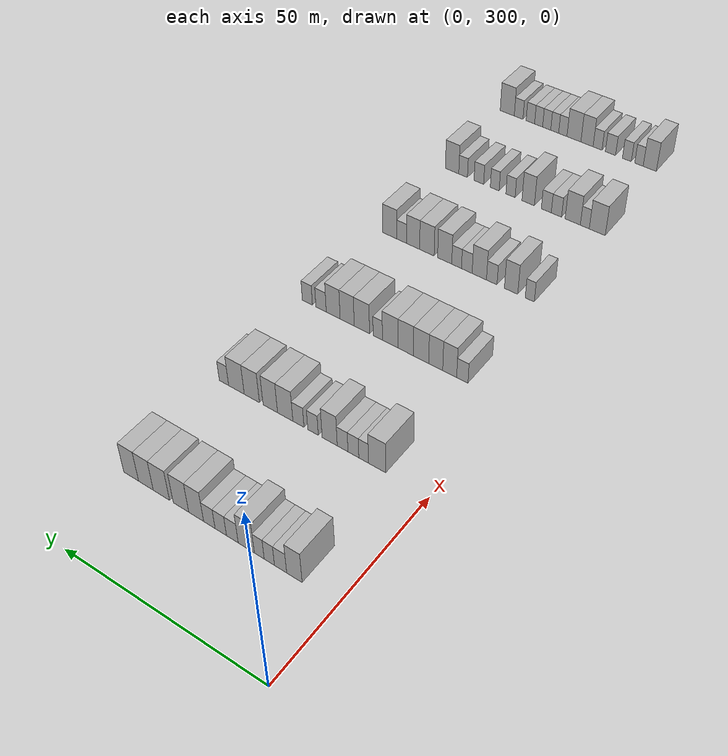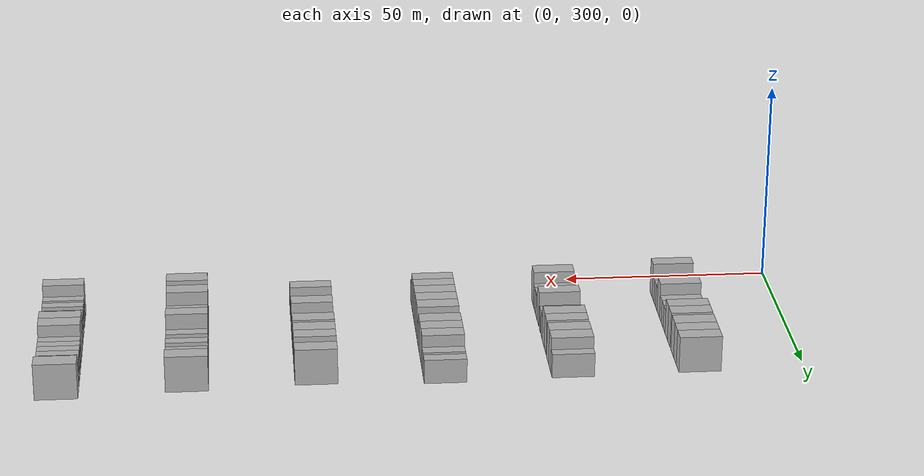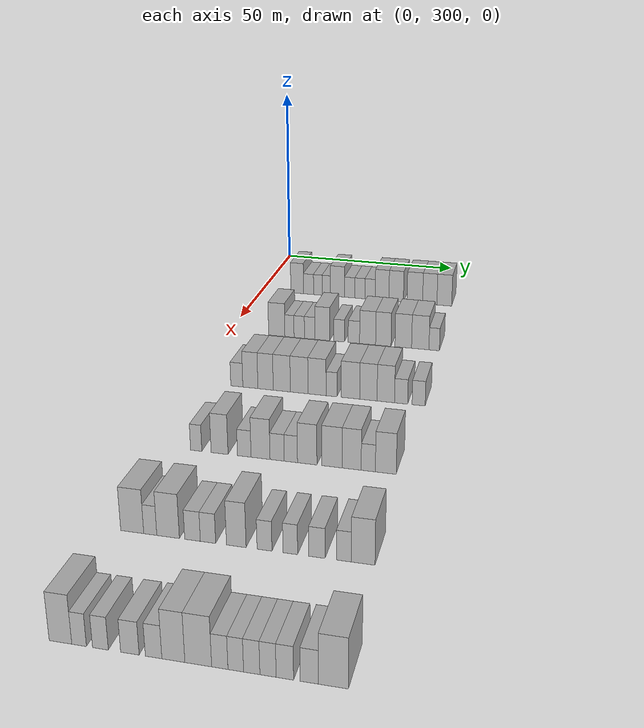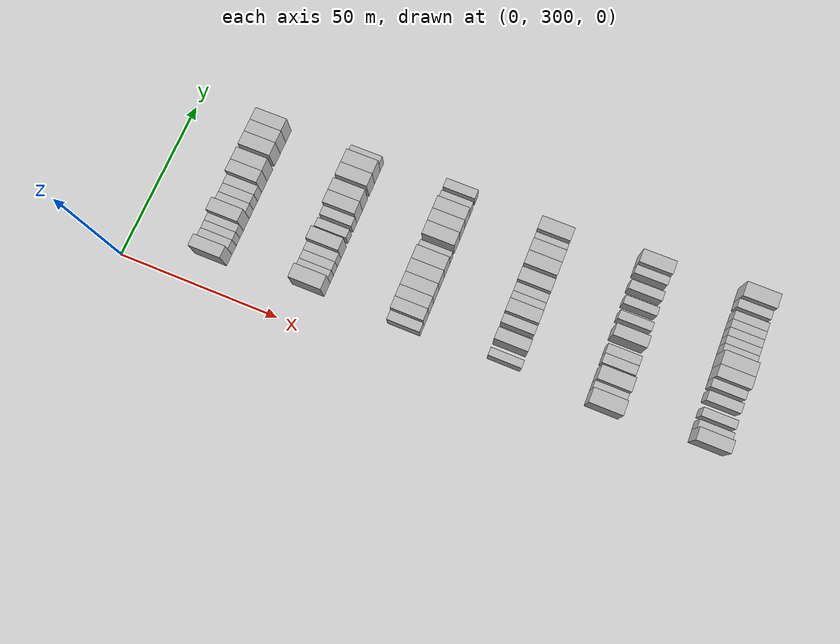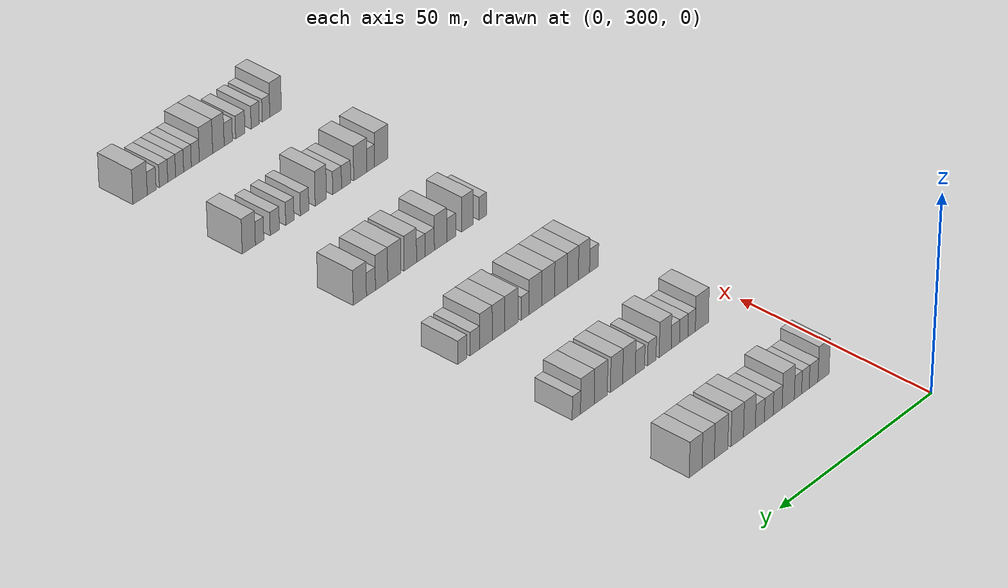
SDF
<sdf version="1.6">
 <world name="default">
  <model name="building_198">
   <static>1</static>
   <pose>25.0000 310.2399 0 0.000000 0.000000 0.000000</pose>
   <link name="link">
    <pose>0 0 4.50 0 0 0</pose>
    <collision name="collision"><geometry><box><size>10.0000 3.6778 9.0000</size></box></geometry></collision>
    <visual name="visual">
     <cast_shadows>0</cast_shadows>
     <geometry><box><size>10.0000 3.6778 9.0000</size></box></geometry>
     <material>
      <script>
       <uri>model://HANNAS_wall/materials/scripts</uri>
       <uri>model://HANNAS_wall/materials/textures</uri>
       <name>vrc/HANNAS_wall</name>
      </script>
     </material>
    </visual>
   </link>
  </model>
  <model name="building_199">
   <static>1</static>
   <pose>25.0000 313.5424 0 0.000000 0.000000 0.000000</pose>
   <link name="link">
    <pose>0 0 3.00 0 0 0</pose>
    <collision name="collision"><geometry><box><size>10.0000 2.9272 6.0000</size></box></geometry></collision>
    <visual name="visual">
     <cast_shadows>0</cast_shadows>
     <geometry><box><size>10.0000 2.9272 6.0000</size></box></geometry>
     <material>
      <script>
       <uri>model://HANNAS_wall/materials/scripts</uri>
       <uri>model://HANNAS_wall/materials/textures</uri>
       <name>vrc/HANNAS_wall</name>
      </script>
     </material>
    </visual>
   </link>
  </model>
  <model name="building_200">
   <static>1</static>
   <pose>25.0000 316.2528 0 0.000000 0.000000 0.000000</pose>
   <link name="link">
    <pose>0 0 3.00 0 0 0</pose>
    <collision name="collision"><geometry><box><size>10.0000 2.4934 6.0000</size></box></geometry></collision>
    <visual name="visual">
     <cast_shadows>0</cast_shadows>
     <geometry><box><size>10.0000 2.4934 6.0000</size></box></geometry>
     <material>
      <script>
       <uri>model://HANNAS_wall/materials/scripts</uri>
       <uri>model://HANNAS_wall/materials/textures</uri>
       <name>vrc/HANNAS_wall</name>
      </script>
     </material>
    </visual>
   </link>
  </model>
  <model name="building_201">
   <static>1</static>
   <pose>25.0000 318.7063 0 0.000000 0.000000 0.000000</pose>
   <link name="link">
    <pose>0 0 3.00 0 0 0</pose>
    <collision name="collision"><geometry><box><size>10.0000 2.4136 6.0000</size></box></geometry></collision>
    <visual name="visual">
     <cast_shadows>0</cast_shadows>
     <geometry><box><size>10.0000 2.4136 6.0000</size></box></geometry>
     <material>
      <script>
       <uri>model://HANNAS_wall/materials/scripts</uri>
       <uri>model://HANNAS_wall/materials/textures</uri>
       <name>vrc/HANNAS_wall</name>
      </script>
     </material>
    </visual>
   </link>
  </model>
  <model name="building_202">
   <static>1</static>
   <pose>25.0000 321.9130 0 0.000000 0.000000 0.000000</pose>
   <link name="link">
    <pose>0 0 4.50 0 0 0</pose>
    <collision name="collision"><geometry><box><size>10.0000 3.9999 9.0000</size></box></geometry></collision>
    <visual name="visual">
     <cast_shadows>0</cast_shadows>
     <geometry><box><size>10.0000 3.9999 9.0000</size></box></geometry>
     <material>
      <script>
       <uri>model://HANNAS_wall/materials/scripts</uri>
       <uri>model://HANNAS_wall/materials/textures</uri>
       <name>vrc/HANNAS_wall</name>
      </script>
     </material>
    </visual>
   </link>
  </model>
  <model name="building_203">
   <static>1</static>
   <pose>25.0000 325.3806 0 0.000000 0.000000 0.000000</pose>
   <link name="link">
    <pose>0 0 3.00 0 0 0</pose>
    <collision name="collision"><geometry><box><size>10.0000 2.9354 6.0000</size></box></geometry></collision>
    <visual name="visual">
     <cast_shadows>0</cast_shadows>
     <geometry><box><size>10.0000 2.9354 6.0000</size></box></geometry>
     <material>
      <script>
       <uri>model://HANNAS_wall/materials/scripts</uri>
       <uri>model://HANNAS_wall/materials/textures</uri>
       <name>vrc/HANNAS_wall</name>
      </script>
     </material>
    </visual>
   </link>
  </model>
  <model name="building_204">
   <static>1</static>
   <pose>25.0000 328.2910 0 0.000000 0.000000 0.000000</pose>
   <link name="link">
    <pose>0 0 3.00 0 0 0</pose>
    <collision name="collision"><geometry><box><size>10.0000 2.8855 6.0000</size></box></geometry></collision>
    <visual name="visual">
     <cast_shadows>0</cast_shadows>
     <geometry><box><size>10.0000 2.8855 6.0000</size></box></geometry>
     <material>
      <script>
       <uri>model://HANNAS_wall/materials/scripts</uri>
       <uri>model://HANNAS_wall/materials/textures</uri>
       <name>vrc/HANNAS_wall</name>
      </script>
     </material>
    </visual>
   </link>
  </model>
  <model name="building_205">
   <static>1</static>
   <pose>25.0000 331.2012 0 0.000000 0.000000 0.000000</pose>
   <link name="link">
    <pose>0 0 3.00 0 0 0</pose>
    <collision name="collision"><geometry><box><size>10.0000 2.9349 6.0000</size></box></geometry></collision>
    <visual name="visual">
     <cast_shadows>0</cast_shadows>
     <geometry><box><size>10.0000 2.9349 6.0000</size></box></geometry>
     <material>
      <script>
       <uri>model://HANNAS_wall/materials/scripts</uri>
       <uri>model://HANNAS_wall/materials/textures</uri>
       <name>vrc/HANNAS_wall</name>
      </script>
     </material>
    </visual>
   </link>
  </model>
  <model name="building_206">
   <static>1</static>
   <pose>25.0000 334.5912 0 0.000000 0.000000 0.000000</pose>
   <link name="link">
    <pose>0 0 4.50 0 0 0</pose>
    <collision name="collision"><geometry><box><size>10.0000 3.8451 9.0000</size></box></geometry></collision>
    <visual name="visual">
     <cast_shadows>0</cast_shadows>
     <geometry><box><size>10.0000 3.8451 9.0000</size></box></geometry>
     <material>
      <script>
       <uri>model://HANNAS_wall/materials/scripts</uri>
       <uri>model://HANNAS_wall/materials/textures</uri>
       <name>vrc/HANNAS_wall</name>
      </script>
     </material>
    </visual>
   </link>
  </model>
  <model name="building_207">
   <static>1</static>
   <pose>25.0000 338.5432 0 0.000000 0.000000 0.000000</pose>
   <link name="link">
    <pose>0 0 4.50 0 0 0</pose>
    <collision name="collision"><geometry><box><size>10.0000 4.0588 9.0000</size></box></geometry></collision>
    <visual name="visual">
     <cast_shadows>0</cast_shadows>
     <geometry><box><size>10.0000 4.0588 9.0000</size></box></geometry>
     <material>
      <script>
       <uri>model://HANNAS_wall/materials/scripts</uri>
       <uri>model://HANNAS_wall/materials/textures</uri>
       <name>vrc/HANNAS_wall</name>
      </script>
     </material>
    </visual>
   </link>
  </model>
  <model name="building_208">
   <static>1</static>
   <pose>25.0000 343.7365 0 0.000000 0.000000 0.000000</pose>
   <link name="link">
    <pose>0 0 4.50 0 0 0</pose>
    <collision name="collision"><geometry><box><size>10.0000 4.3278 9.0000</size></box></geometry></collision>
    <visual name="visual">
     <cast_shadows>0</cast_shadows>
     <geometry><box><size>10.0000 4.3278 9.0000</size></box></geometry>
     <material>
      <script>
       <uri>model://HANNAS_wall/materials/scripts</uri>
       <uri>model://HANNAS_wall/materials/textures</uri>
       <name>vrc/HANNAS_wall</name>
      </script>
     </material>
    </visual>
   </link>
  </model>
  <model name="building_209">
   <static>1</static>
   <pose>25.0000 347.8815 0 0.000000 0.000000 0.000000</pose>
   <link name="link">
    <pose>0 0 4.50 0 0 0</pose>
    <collision name="collision"><geometry><box><size>10.0000 3.9622 9.0000</size></box></geometry></collision>
    <visual name="visual">
     <cast_shadows>0</cast_shadows>
     <geometry><box><size>10.0000 3.9622 9.0000</size></box></geometry>
     <material>
      <script>
       <uri>model://HANNAS_wall/materials/scripts</uri>
       <uri>model://HANNAS_wall/materials/textures</uri>
       <name>vrc/HANNAS_wall</name>
      </script>
     </material>
    </visual>
   </link>
  </model>
  <model name="building_210">
   <static>1</static>
   <pose>25.0000 351.8921 0 0.000000 0.000000 0.000000</pose>
   <link name="link">
    <pose>0 0 4.50 0 0 0</pose>
    <collision name="collision"><geometry><box><size>10.0000 4.0591 9.0000</size></box></geometry></collision>
    <visual name="visual">
     <cast_shadows>0</cast_shadows>
     <geometry><box><size>10.0000 4.0591 9.0000</size></box></geometry>
     <material>
      <script>
       <uri>model://HANNAS_wall/materials/scripts</uri>
       <uri>model://HANNAS_wall/materials/textures</uri>
       <name>vrc/HANNAS_wall</name>
      </script>
     </material>
    </visual>
   </link>
  </model>
  <model name="building_439">
   <static>1</static>
   <pose>55.0000 312.7721 0 0.000000 0.000000 0.000000</pose>
   <link name="link">
    <pose>0 0 4.50 0 0 0</pose>
    <collision name="collision"><geometry><box><size>10.0000 4.3113 9.0000</size></box></geometry></collision>
    <visual name="visual">
     <cast_shadows>0</cast_shadows>
     <geometry><box><size>10.0000 4.3113 9.0000</size></box></geometry>
     <material>
      <script>
       <uri>model://HANNAS_wall/materials/scripts</uri>
       <uri>model://HANNAS_wall/materials/textures</uri>
       <name>vrc/HANNAS_wall</name>
      </script>
     </material>
    </visual>
   </link>
  </model>
  <model name="building_440">
   <static>1</static>
   <pose>55.0000 316.1409 0 0.000000 0.000000 0.000000</pose>
   <link name="link">
    <pose>0 0 3.00 0 0 0</pose>
    <collision name="collision"><geometry><box><size>10.0000 2.4265 6.0000</size></box></geometry></collision>
    <visual name="visual">
     <cast_shadows>0</cast_shadows>
     <geometry><box><size>10.0000 2.4265 6.0000</size></box></geometry>
     <material>
      <script>
       <uri>model://HANNAS_wall/materials/scripts</uri>
       <uri>model://HANNAS_wall/materials/textures</uri>
       <name>vrc/HANNAS_wall</name>
      </script>
     </material>
    </visual>
   </link>
  </model>
  <model name="building_441">
   <static>1</static>
   <pose>55.0000 318.7251 0 0.000000 0.000000 0.000000</pose>
   <link name="link">
    <pose>0 0 3.00 0 0 0</pose>
    <collision name="collision"><geometry><box><size>10.0000 2.7418 6.0000</size></box></geometry></collision>
    <visual name="visual">
     <cast_shadows>0</cast_shadows>
     <geometry><box><size>10.0000 2.7418 6.0000</size></box></geometry>
     <material>
      <script>
       <uri>model://HANNAS_wall/materials/scripts</uri>
       <uri>model://HANNAS_wall/materials/textures</uri>
       <name>vrc/HANNAS_wall</name>
      </script>
     </material>
    </visual>
   </link>
  </model>
  <model name="building_442">
   <static>1</static>
   <pose>55.0000 321.4674 0 0.000000 0.000000 0.000000</pose>
   <link name="link">
    <pose>0 0 3.00 0 0 0</pose>
    <collision name="collision"><geometry><box><size>10.0000 2.7429 6.0000</size></box></geometry></collision>
    <visual name="visual">
     <cast_shadows>0</cast_shadows>
     <geometry><box><size>10.0000 2.7429 6.0000</size></box></geometry>
     <material>
      <script>
       <uri>model://HANNAS_wall/materials/scripts</uri>
       <uri>model://HANNAS_wall/materials/textures</uri>
       <name>vrc/HANNAS_wall</name>
      </script>
     </material>
    </visual>
   </link>
  </model>
  <model name="building_443">
   <static>1</static>
   <pose>55.0000 324.7891 0 0.000000 0.000000 0.000000</pose>
   <link name="link">
    <pose>0 0 4.50 0 0 0</pose>
    <collision name="collision"><geometry><box><size>10.0000 3.9006 9.0000</size></box></geometry></collision>
    <visual name="visual">
     <cast_shadows>0</cast_shadows>
     <geometry><box><size>10.0000 3.9006 9.0000</size></box></geometry>
     <material>
      <script>
       <uri>model://HANNAS_wall/materials/scripts</uri>
       <uri>model://HANNAS_wall/materials/textures</uri>
       <name>vrc/HANNAS_wall</name>
      </script>
     </material>
    </visual>
   </link>
  </model>
  <model name="building_444">
   <static>1</static>
   <pose>55.0000 329.1104 0 0.000000 0.000000 0.000000</pose>
   <link name="link">
    <pose>0 0 3.00 0 0 0</pose>
    <collision name="collision"><geometry><box><size>10.0000 2.7420 6.0000</size></box></geometry></collision>
    <visual name="visual">
     <cast_shadows>0</cast_shadows>
     <geometry><box><size>10.0000 2.7420 6.0000</size></box></geometry>
     <material>
      <script>
       <uri>model://HANNAS_wall/materials/scripts</uri>
       <uri>model://HANNAS_wall/materials/textures</uri>
       <name>vrc/HANNAS_wall</name>
      </script>
     </material>
    </visual>
   </link>
  </model>
  <model name="building_445">
   <static>1</static>
   <pose>55.0000 332.9516 0 0.000000 0.000000 0.000000</pose>
   <link name="link">
    <pose>0 0 3.00 0 0 0</pose>
    <collision name="collision"><geometry><box><size>10.0000 2.9402 6.0000</size></box></geometry></collision>
    <visual name="visual">
     <cast_shadows>0</cast_shadows>
     <geometry><box><size>10.0000 2.9402 6.0000</size></box></geometry>
     <material>
      <script>
       <uri>model://HANNAS_wall/materials/scripts</uri>
       <uri>model://HANNAS_wall/materials/textures</uri>
       <name>vrc/HANNAS_wall</name>
      </script>
     </material>
    </visual>
   </link>
  </model>
  <model name="building_446">
   <static>1</static>
   <pose>55.0000 336.4746 0 0.000000 0.000000 0.000000</pose>
   <link name="link">
    <pose>0 0 4.50 0 0 0</pose>
    <collision name="collision"><geometry><box><size>10.0000 4.1059 9.0000</size></box></geometry></collision>
    <visual name="visual">
     <cast_shadows>0</cast_shadows>
     <geometry><box><size>10.0000 4.1059 9.0000</size></box></geometry>
     <material>
      <script>
       <uri>model://HANNAS_wall/materials/scripts</uri>
       <uri>model://HANNAS_wall/materials/textures</uri>
       <name>vrc/HANNAS_wall</name>
      </script>
     </material>
    </visual>
   </link>
  </model>
  <model name="building_447">
   <static>1</static>
   <pose>55.0000 340.4874 0 0.000000 0.000000 0.000000</pose>
   <link name="link">
    <pose>0 0 4.50 0 0 0</pose>
    <collision name="collision"><geometry><box><size>10.0000 3.9196 9.0000</size></box></geometry></collision>
    <visual name="visual">
     <cast_shadows>0</cast_shadows>
     <geometry><box><size>10.0000 3.9196 9.0000</size></box></geometry>
     <material>
      <script>
       <uri>model://HANNAS_wall/materials/scripts</uri>
       <uri>model://HANNAS_wall/materials/textures</uri>
       <name>vrc/HANNAS_wall</name>
      </script>
     </material>
    </visual>
   </link>
  </model>
  <model name="building_448">
   <static>1</static>
   <pose>55.0000 345.5408 0 0.000000 0.000000 0.000000</pose>
   <link name="link">
    <pose>0 0 4.50 0 0 0</pose>
    <collision name="collision"><geometry><box><size>10.0000 4.1872 9.0000</size></box></geometry></collision>
    <visual name="visual">
     <cast_shadows>0</cast_shadows>
     <geometry><box><size>10.0000 4.1872 9.0000</size></box></geometry>
     <material>
      <script>
       <uri>model://HANNAS_wall/materials/scripts</uri>
       <uri>model://HANNAS_wall/materials/textures</uri>
       <name>vrc/HANNAS_wall</name>
      </script>
     </material>
    </visual>
   </link>
  </model>
  <model name="building_449">
   <static>1</static>
   <pose>55.0000 349.8086 0 0.000000 0.000000 0.000000</pose>
   <link name="link">
    <pose>0 0 4.50 0 0 0</pose>
    <collision name="collision"><geometry><box><size>10.0000 4.3483 9.0000</size></box></geometry></collision>
    <visual name="visual">
     <cast_shadows>0</cast_shadows>
     <geometry><box><size>10.0000 4.3483 9.0000</size></box></geometry>
     <material>
      <script>
       <uri>model://HANNAS_wall/materials/scripts</uri>
       <uri>model://HANNAS_wall/materials/textures</uri>
       <name>vrc/HANNAS_wall</name>
      </script>
     </material>
    </visual>
   </link>
  </model>
  <model name="building_450">
   <static>1</static>
   <pose>55.0000 353.2984 0 0.000000 0.000000 0.000000</pose>
   <link name="link">
    <pose>0 0 3.00 0 0 0</pose>
    <collision name="collision"><geometry><box><size>10.0000 2.6314 6.0000</size></box></geometry></collision>
    <visual name="visual">
     <cast_shadows>0</cast_shadows>
     <geometry><box><size>10.0000 2.6314 6.0000</size></box></geometry>
     <material>
      <script>
       <uri>model://HANNAS_wall/materials/scripts</uri>
       <uri>model://HANNAS_wall/materials/textures</uri>
       <name>vrc/HANNAS_wall</name>
      </script>
     </material>
    </visual>
   </link>
  </model>
  <model name="building_670">
   <static>1</static>
   <pose>85.0000 311.7205 0 0.000000 0.000000 0.000000</pose>
   <link name="link">
    <pose>0 0 3.00 0 0 0</pose>
    <collision name="collision"><geometry><box><size>10.0000 2.8967 6.0000</size></box></geometry></collision>
    <visual name="visual">
     <cast_shadows>0</cast_shadows>
     <geometry><box><size>10.0000 2.8967 6.0000</size></box></geometry>
     <material>
      <script>
       <uri>model://HANNAS_wall/materials/scripts</uri>
       <uri>model://HANNAS_wall/materials/textures</uri>
       <name>vrc/HANNAS_wall</name>
      </script>
     </material>
    </visual>
   </link>
  </model>
  <model name="building_671">
   <static>1</static>
   <pose>85.0000 314.9783 0 0.000000 0.000000 0.000000</pose>
   <link name="link">
    <pose>0 0 4.50 0 0 0</pose>
    <collision name="collision"><geometry><box><size>10.0000 3.6187 9.0000</size></box></geometry></collision>
    <visual name="visual">
     <cast_shadows>0</cast_shadows>
     <geometry><box><size>10.0000 3.6187 9.0000</size></box></geometry>
     <material>
      <script>
       <uri>model://HANNAS_wall/materials/scripts</uri>
       <uri>model://HANNAS_wall/materials/textures</uri>
       <name>vrc/HANNAS_wall</name>
      </script>
     </material>
    </visual>
   </link>
  </model>
  <model name="building_672">
   <static>1</static>
   <pose>85.0000 318.6180 0 0.000000 0.000000 0.000000</pose>
   <link name="link">
    <pose>0 0 4.50 0 0 0</pose>
    <collision name="collision"><geometry><box><size>10.0000 3.6608 9.0000</size></box></geometry></collision>
    <visual name="visual">
     <cast_shadows>0</cast_shadows>
     <geometry><box><size>10.0000 3.6608 9.0000</size></box></geometry>
     <material>
      <script>
       <uri>model://HANNAS_wall/materials/scripts</uri>
       <uri>model://HANNAS_wall/materials/textures</uri>
       <name>vrc/HANNAS_wall</name>
      </script>
     </material>
    </visual>
   </link>
  </model>
  <model name="building_673">
   <static>1</static>
   <pose>85.0000 322.4787 0 0.000000 0.000000 0.000000</pose>
   <link name="link">
    <pose>0 0 4.50 0 0 0</pose>
    <collision name="collision"><geometry><box><size>10.0000 4.0605 9.0000</size></box></geometry></collision>
    <visual name="visual">
     <cast_shadows>0</cast_shadows>
     <geometry><box><size>10.0000 4.0605 9.0000</size></box></geometry>
     <material>
      <script>
       <uri>model://HANNAS_wall/materials/scripts</uri>
       <uri>model://HANNAS_wall/materials/textures</uri>
       <name>vrc/HANNAS_wall</name>
      </script>
     </material>
    </visual>
   </link>
  </model>
  <model name="building_674">
   <static>1</static>
   <pose>85.0000 326.5839 0 0.000000 0.000000 0.000000</pose>
   <link name="link">
    <pose>0 0 4.50 0 0 0</pose>
    <collision name="collision"><geometry><box><size>10.0000 4.1499 9.0000</size></box></geometry></collision>
    <visual name="visual">
     <cast_shadows>0</cast_shadows>
     <geometry><box><size>10.0000 4.1499 9.0000</size></box></geometry>
     <material>
      <script>
       <uri>model://HANNAS_wall/materials/scripts</uri>
       <uri>model://HANNAS_wall/materials/textures</uri>
       <name>vrc/HANNAS_wall</name>
      </script>
     </material>
    </visual>
   </link>
  </model>
  <model name="building_675">
   <static>1</static>
   <pose>85.0000 330.7628 0 0.000000 0.000000 0.000000</pose>
   <link name="link">
    <pose>0 0 4.50 0 0 0</pose>
    <collision name="collision"><geometry><box><size>10.0000 4.2077 9.0000</size></box></geometry></collision>
    <visual name="visual">
     <cast_shadows>0</cast_shadows>
     <geometry><box><size>10.0000 4.2077 9.0000</size></box></geometry>
     <material>
      <script>
       <uri>model://HANNAS_wall/materials/scripts</uri>
       <uri>model://HANNAS_wall/materials/textures</uri>
       <name>vrc/HANNAS_wall</name>
      </script>
     </material>
    </visual>
   </link>
  </model>
  <model name="building_676">
   <static>1</static>
   <pose>85.0000 334.1372 0 0.000000 0.000000 0.000000</pose>
   <link name="link">
    <pose>0 0 3.00 0 0 0</pose>
    <collision name="collision"><geometry><box><size>10.0000 2.5412 6.0000</size></box></geometry></collision>
    <visual name="visual">
     <cast_shadows>0</cast_shadows>
     <geometry><box><size>10.0000 2.5412 6.0000</size></box></geometry>
     <material>
      <script>
       <uri>model://HANNAS_wall/materials/scripts</uri>
       <uri>model://HANNAS_wall/materials/textures</uri>
       <name>vrc/HANNAS_wall</name>
      </script>
     </material>
    </visual>
   </link>
  </model>
  <model name="building_677">
   <static>1</static>
   <pose>85.0000 338.5305 0 0.000000 0.000000 0.000000</pose>
   <link name="link">
    <pose>0 0 4.50 0 0 0</pose>
    <collision name="collision"><geometry><box><size>10.0000 4.2453 9.0000</size></box></geometry></collision>
    <visual name="visual">
     <cast_shadows>0</cast_shadows>
     <geometry><box><size>10.0000 4.2453 9.0000</size></box></geometry>
     <material>
      <script>
       <uri>model://HANNAS_wall/materials/scripts</uri>
       <uri>model://HANNAS_wall/materials/textures</uri>
       <name>vrc/HANNAS_wall</name>
      </script>
     </material>
    </visual>
   </link>
  </model>
  <model name="building_678">
   <static>1</static>
   <pose>85.0000 342.6330 0 0.000000 0.000000 0.000000</pose>
   <link name="link">
    <pose>0 0 4.50 0 0 0</pose>
    <collision name="collision"><geometry><box><size>10.0000 3.9598 9.0000</size></box></geometry></collision>
    <visual name="visual">
     <cast_shadows>0</cast_shadows>
     <geometry><box><size>10.0000 3.9598 9.0000</size></box></geometry>
     <material>
      <script>
       <uri>model://HANNAS_wall/materials/scripts</uri>
       <uri>model://HANNAS_wall/materials/textures</uri>
       <name>vrc/HANNAS_wall</name>
      </script>
     </material>
    </visual>
   </link>
  </model>
  <model name="building_679">
   <static>1</static>
   <pose>85.0000 346.5940 0 0.000000 0.000000 0.000000</pose>
   <link name="link">
    <pose>0 0 4.50 0 0 0</pose>
    <collision name="collision"><geometry><box><size>10.0000 3.9621 9.0000</size></box></geometry></collision>
    <visual name="visual">
     <cast_shadows>0</cast_shadows>
     <geometry><box><size>10.0000 3.9621 9.0000</size></box></geometry>
     <material>
      <script>
       <uri>model://HANNAS_wall/materials/scripts</uri>
       <uri>model://HANNAS_wall/materials/textures</uri>
       <name>vrc/HANNAS_wall</name>
      </script>
     </material>
    </visual>
   </link>
  </model>
  <model name="building_680">
   <static>1</static>
   <pose>85.0000 350.0600 0 0.000000 0.000000 0.000000</pose>
   <link name="link">
    <pose>0 0 3.00 0 0 0</pose>
    <collision name="collision"><geometry><box><size>10.0000 2.9699 6.0000</size></box></geometry></collision>
    <visual name="visual">
     <cast_shadows>0</cast_shadows>
     <geometry><box><size>10.0000 2.9699 6.0000</size></box></geometry>
     <material>
      <script>
       <uri>model://HANNAS_wall/materials/scripts</uri>
       <uri>model://HANNAS_wall/materials/textures</uri>
       <name>vrc/HANNAS_wall</name>
      </script>
     </material>
    </visual>
   </link>
  </model>
  <model name="building_681">
   <static>1</static>
   <pose>85.0000 354.0130 0 0.000000 0.000000 0.000000</pose>
   <link name="link">
    <pose>0 0 3.00 0 0 0</pose>
    <collision name="collision"><geometry><box><size>10.0000 2.9361 6.0000</size></box></geometry></collision>
    <visual name="visual">
     <cast_shadows>0</cast_shadows>
     <geometry><box><size>10.0000 2.9361 6.0000</size></box></geometry>
     <material>
      <script>
       <uri>model://HANNAS_wall/materials/scripts</uri>
       <uri>model://HANNAS_wall/materials/textures</uri>
       <name>vrc/HANNAS_wall</name>
      </script>
     </material>
    </visual>
   </link>
  </model>
  <model name="building_910">
   <static>1</static>
   <pose>115.0000 312.6668 0 0.000000 0.000000 0.000000</pose>
   <link name="link">
    <pose>0 0 3.00 0 0 0</pose>
    <collision name="collision"><geometry><box><size>10.0000 2.4229 6.0000</size></box></geometry></collision>
    <visual name="visual">
     <cast_shadows>0</cast_shadows>
     <geometry><box><size>10.0000 2.4229 6.0000</size></box></geometry>
     <material>
      <script>
       <uri>model://HANNAS_wall/materials/scripts</uri>
       <uri>model://HANNAS_wall/materials/textures</uri>
       <name>vrc/HANNAS_wall</name>
      </script>
     </material>
    </visual>
   </link>
  </model>
  <model name="building_911">
   <static>1</static>
   <pose>115.0000 317.6904 0 0.000000 0.000000 0.000000</pose>
   <link name="link">
    <pose>0 0 4.50 0 0 0</pose>
    <collision name="collision"><geometry><box><size>10.0000 3.6242 9.0000</size></box></geometry></collision>
    <visual name="visual">
     <cast_shadows>0</cast_shadows>
     <geometry><box><size>10.0000 3.6242 9.0000</size></box></geometry>
     <material>
      <script>
       <uri>model://HANNAS_wall/materials/scripts</uri>
       <uri>model://HANNAS_wall/materials/textures</uri>
       <name>vrc/HANNAS_wall</name>
      </script>
     </material>
    </visual>
   </link>
  </model>
  <model name="building_912">
   <static>1</static>
   <pose>115.0000 322.9482 0 0.000000 0.000000 0.000000</pose>
   <link name="link">
    <pose>0 0 3.00 0 0 0</pose>
    <collision name="collision"><geometry><box><size>10.0000 2.8916 6.0000</size></box></geometry></collision>
    <visual name="visual">
     <cast_shadows>0</cast_shadows>
     <geometry><box><size>10.0000 2.8916 6.0000</size></box></geometry>
     <material>
      <script>
       <uri>model://HANNAS_wall/materials/scripts</uri>
       <uri>model://HANNAS_wall/materials/textures</uri>
       <name>vrc/HANNAS_wall</name>
      </script>
     </material>
    </visual>
   </link>
  </model>
  <model name="building_913">
   <static>1</static>
   <pose>115.0000 326.3864 0 0.000000 0.000000 0.000000</pose>
   <link name="link">
    <pose>0 0 4.50 0 0 0</pose>
    <collision name="collision"><geometry><box><size>10.0000 3.9847 9.0000</size></box></geometry></collision>
    <visual name="visual">
     <cast_shadows>0</cast_shadows>
     <geometry><box><size>10.0000 3.9847 9.0000</size></box></geometry>
     <material>
      <script>
       <uri>model://HANNAS_wall/materials/scripts</uri>
       <uri>model://HANNAS_wall/materials/textures</uri>
       <name>vrc/HANNAS_wall</name>
      </script>
     </material>
    </visual>
   </link>
  </model>
  <model name="building_914">
   <static>1</static>
   <pose>115.0000 329.8629 0 0.000000 0.000000 0.000000</pose>
   <link name="link">
    <pose>0 0 3.00 0 0 0</pose>
    <collision name="collision"><geometry><box><size>10.0000 2.9685 6.0000</size></box></geometry></collision>
    <visual name="visual">
     <cast_shadows>0</cast_shadows>
     <geometry><box><size>10.0000 2.9685 6.0000</size></box></geometry>
     <material>
      <script>
       <uri>model://HANNAS_wall/materials/scripts</uri>
       <uri>model://HANNAS_wall/materials/textures</uri>
       <name>vrc/HANNAS_wall</name>
      </script>
     </material>
    </visual>
   </link>
  </model>
  <model name="building_915">
   <static>1</static>
   <pose>115.0000 332.7223 0 0.000000 0.000000 0.000000</pose>
   <link name="link">
    <pose>0 0 3.00 0 0 0</pose>
    <collision name="collision"><geometry><box><size>10.0000 2.7502 6.0000</size></box></geometry></collision>
    <visual name="visual">
     <cast_shadows>0</cast_shadows>
     <geometry><box><size>10.0000 2.7502 6.0000</size></box></geometry>
     <material>
      <script>
       <uri>model://HANNAS_wall/materials/scripts</uri>
       <uri>model://HANNAS_wall/materials/textures</uri>
       <name>vrc/HANNAS_wall</name>
      </script>
     </material>
    </visual>
   </link>
  </model>
  <model name="building_916">
   <static>1</static>
   <pose>115.0000 336.1027 0 0.000000 0.000000 0.000000</pose>
   <link name="link">
    <pose>0 0 4.50 0 0 0</pose>
    <collision name="collision"><geometry><box><size>10.0000 4.0107 9.0000</size></box></geometry></collision>
    <visual name="visual">
     <cast_shadows>0</cast_shadows>
     <geometry><box><size>10.0000 4.0107 9.0000</size></box></geometry>
     <material>
      <script>
       <uri>model://HANNAS_wall/materials/scripts</uri>
       <uri>model://HANNAS_wall/materials/textures</uri>
       <name>vrc/HANNAS_wall</name>
      </script>
     </material>
    </visual>
   </link>
  </model>
  <model name="building_917">
   <static>1</static>
   <pose>115.0000 341.1974 0 0.000000 0.000000 0.000000</pose>
   <link name="link">
    <pose>0 0 4.50 0 0 0</pose>
    <collision name="collision"><geometry><box><size>10.0000 4.1787 9.0000</size></box></geometry></collision>
    <visual name="visual">
     <cast_shadows>0</cast_shadows>
     <geometry><box><size>10.0000 4.1787 9.0000</size></box></geometry>
     <material>
      <script>
       <uri>model://HANNAS_wall/materials/scripts</uri>
       <uri>model://HANNAS_wall/materials/textures</uri>
       <name>vrc/HANNAS_wall</name>
      </script>
     </material>
    </visual>
   </link>
  </model>
  <model name="building_918">
   <static>1</static>
   <pose>115.0000 345.2113 0 0.000000 0.000000 0.000000</pose>
   <link name="link">
    <pose>0 0 4.50 0 0 0</pose>
    <collision name="collision"><geometry><box><size>10.0000 3.8491 9.0000</size></box></geometry></collision>
    <visual name="visual">
     <cast_shadows>0</cast_shadows>
     <geometry><box><size>10.0000 3.8491 9.0000</size></box></geometry>
     <material>
      <script>
       <uri>model://HANNAS_wall/materials/scripts</uri>
       <uri>model://HANNAS_wall/materials/textures</uri>
       <name>vrc/HANNAS_wall</name>
      </script>
     </material>
    </visual>
   </link>
  </model>
  <model name="building_919">
   <static>1</static>
   <pose>115.0000 348.5658 0 0.000000 0.000000 0.000000</pose>
   <link name="link">
    <pose>0 0 3.00 0 0 0</pose>
    <collision name="collision"><geometry><box><size>10.0000 2.8598 6.0000</size></box></geometry></collision>
    <visual name="visual">
     <cast_shadows>0</cast_shadows>
     <geometry><box><size>10.0000 2.8598 6.0000</size></box></geometry>
     <material>
      <script>
       <uri>model://HANNAS_wall/materials/scripts</uri>
       <uri>model://HANNAS_wall/materials/textures</uri>
       <name>vrc/HANNAS_wall</name>
      </script>
     </material>
    </visual>
   </link>
  </model>
  <model name="building_920">
   <static>1</static>
   <pose>115.0000 352.0821 0 0.000000 0.000000 0.000000</pose>
   <link name="link">
    <pose>0 0 4.50 0 0 0</pose>
    <collision name="collision"><geometry><box><size>10.0000 4.1727 9.0000</size></box></geometry></collision>
    <visual name="visual">
     <cast_shadows>0</cast_shadows>
     <geometry><box><size>10.0000 4.1727 9.0000</size></box></geometry>
     <material>
      <script>
       <uri>model://HANNAS_wall/materials/scripts</uri>
       <uri>model://HANNAS_wall/materials/textures</uri>
       <name>vrc/HANNAS_wall</name>
      </script>
     </material>
    </visual>
   </link>
  </model>
  <model name="building_1128">
   <static>1</static>
   <pose>145.0000 311.3826 0 0.000000 0.000000 0.000000</pose>
   <link name="link">
    <pose>0 0 4.50 0 0 0</pose>
    <collision name="collision"><geometry><box><size>10.0000 4.4047 9.0000</size></box></geometry></collision>
    <visual name="visual">
     <cast_shadows>0</cast_shadows>
     <geometry><box><size>10.0000 4.4047 9.0000</size></box></geometry>
     <material>
      <script>
       <uri>model://HANNAS_wall/materials/scripts</uri>
       <uri>model://HANNAS_wall/materials/textures</uri>
       <name>vrc/HANNAS_wall</name>
      </script>
     </material>
    </visual>
   </link>
  </model>
  <model name="building_1129">
   <static>1</static>
   <pose>145.0000 314.8268 0 0.000000 0.000000 0.000000</pose>
   <link name="link">
    <pose>0 0 3.00 0 0 0</pose>
    <collision name="collision"><geometry><box><size>10.0000 2.4836 6.0000</size></box></geometry></collision>
    <visual name="visual">
     <cast_shadows>0</cast_shadows>
     <geometry><box><size>10.0000 2.4836 6.0000</size></box></geometry>
     <material>
      <script>
       <uri>model://HANNAS_wall/materials/scripts</uri>
       <uri>model://HANNAS_wall/materials/textures</uri>
       <name>vrc/HANNAS_wall</name>
      </script>
     </material>
    </visual>
   </link>
  </model>
  <model name="building_1130">
   <static>1</static>
   <pose>145.0000 318.2053 0 0.000000 0.000000 0.000000</pose>
   <link name="link">
    <pose>0 0 4.50 0 0 0</pose>
    <collision name="collision"><geometry><box><size>10.0000 4.2733 9.0000</size></box></geometry></collision>
    <visual name="visual">
     <cast_shadows>0</cast_shadows>
     <geometry><box><size>10.0000 4.2733 9.0000</size></box></geometry>
     <material>
      <script>
       <uri>model://HANNAS_wall/materials/scripts</uri>
       <uri>model://HANNAS_wall/materials/textures</uri>
       <name>vrc/HANNAS_wall</name>
      </script>
     </material>
    </visual>
   </link>
  </model>
  <model name="building_1131">
   <static>1</static>
   <pose>145.0000 322.8042 0 0.000000 0.000000 0.000000</pose>
   <link name="link">
    <pose>0 0 3.00 0 0 0</pose>
    <collision name="collision"><geometry><box><size>10.0000 2.9246 6.0000</size></box></geometry></collision>
    <visual name="visual">
     <cast_shadows>0</cast_shadows>
     <geometry><box><size>10.0000 2.9246 6.0000</size></box></geometry>
     <material>
      <script>
       <uri>model://HANNAS_wall/materials/scripts</uri>
       <uri>model://HANNAS_wall/materials/textures</uri>
       <name>vrc/HANNAS_wall</name>
      </script>
     </material>
    </visual>
   </link>
  </model>
  <model name="building_1132">
   <static>1</static>
   <pose>145.0000 325.6889 0 0.000000 0.000000 0.000000</pose>
   <link name="link">
    <pose>0 0 3.00 0 0 0</pose>
    <collision name="collision"><geometry><box><size>10.0000 2.8449 6.0000</size></box></geometry></collision>
    <visual name="visual">
     <cast_shadows>0</cast_shadows>
     <geometry><box><size>10.0000 2.8449 6.0000</size></box></geometry>
     <material>
      <script>
       <uri>model://HANNAS_wall/materials/scripts</uri>
       <uri>model://HANNAS_wall/materials/textures</uri>
       <name>vrc/HANNAS_wall</name>
      </script>
     </material>
    </visual>
   </link>
  </model>
  <model name="building_1133">
   <static>1</static>
   <pose>145.0000 330.9141 0 0.000000 0.000000 0.000000</pose>
   <link name="link">
    <pose>0 0 4.50 0 0 0</pose>
    <collision name="collision"><geometry><box><size>10.0000 3.6054 9.0000</size></box></geometry></collision>
    <visual name="visual">
     <cast_shadows>0</cast_shadows>
     <geometry><box><size>10.0000 3.6054 9.0000</size></box></geometry>
     <material>
      <script>
       <uri>model://HANNAS_wall/materials/scripts</uri>
       <uri>model://HANNAS_wall/materials/textures</uri>
       <name>vrc/HANNAS_wall</name>
      </script>
     </material>
    </visual>
   </link>
  </model>
  <model name="building_1134">
   <static>1</static>
   <pose>145.0000 336.0691 0 0.000000 0.000000 0.000000</pose>
   <link name="link">
    <pose>0 0 3.00 0 0 0</pose>
    <collision name="collision"><geometry><box><size>10.0000 2.7046 6.0000</size></box></geometry></collision>
    <visual name="visual">
     <cast_shadows>0</cast_shadows>
     <geometry><box><size>10.0000 2.7046 6.0000</size></box></geometry>
     <material>
      <script>
       <uri>model://HANNAS_wall/materials/scripts</uri>
       <uri>model://HANNAS_wall/materials/textures</uri>
       <name>vrc/HANNAS_wall</name>
      </script>
     </material>
    </visual>
   </link>
  </model>
  <model name="building_1135">
   <static>1</static>
   <pose>145.0000 340.7325 0 0.000000 0.000000 0.000000</pose>
   <link name="link">
    <pose>0 0 3.00 0 0 0</pose>
    <collision name="collision"><geometry><box><size>10.0000 2.6223 6.0000</size></box></geometry></collision>
    <visual name="visual">
     <cast_shadows>0</cast_shadows>
     <geometry><box><size>10.0000 2.6223 6.0000</size></box></geometry>
     <material>
      <script>
       <uri>model://HANNAS_wall/materials/scripts</uri>
       <uri>model://HANNAS_wall/materials/textures</uri>
       <name>vrc/HANNAS_wall</name>
      </script>
     </material>
    </visual>
   </link>
  </model>
  <model name="building_1136">
   <static>1</static>
   <pose>145.0000 345.4892 0 0.000000 0.000000 0.000000</pose>
   <link name="link">
    <pose>0 0 3.00 0 0 0</pose>
    <collision name="collision"><geometry><box><size>10.0000 2.8912 6.0000</size></box></geometry></collision>
    <visual name="visual">
     <cast_shadows>0</cast_shadows>
     <geometry><box><size>10.0000 2.8912 6.0000</size></box></geometry>
     <material>
      <script>
       <uri>model://HANNAS_wall/materials/scripts</uri>
       <uri>model://HANNAS_wall/materials/textures</uri>
       <name>vrc/HANNAS_wall</name>
      </script>
     </material>
    </visual>
   </link>
  </model>
  <model name="building_1137">
   <static>1</static>
   <pose>145.0000 350.2547 0 0.000000 0.000000 0.000000</pose>
   <link name="link">
    <pose>0 0 3.00 0 0 0</pose>
    <collision name="collision"><geometry><box><size>10.0000 2.6399 6.0000</size></box></geometry></collision>
    <visual name="visual">
     <cast_shadows>0</cast_shadows>
     <geometry><box><size>10.0000 2.6399 6.0000</size></box></geometry>
     <material>
      <script>
       <uri>model://HANNAS_wall/materials/scripts</uri>
       <uri>model://HANNAS_wall/materials/textures</uri>
       <name>vrc/HANNAS_wall</name>
      </script>
     </material>
    </visual>
   </link>
  </model>
  <model name="building_1138">
   <static>1</static>
   <pose>145.0000 353.6368 0 0.000000 0.000000 0.000000</pose>
   <link name="link">
    <pose>0 0 4.50 0 0 0</pose>
    <collision name="collision"><geometry><box><size>10.0000 4.1244 9.0000</size></box></geometry></collision>
    <visual name="visual">
     <cast_shadows>0</cast_shadows>
     <geometry><box><size>10.0000 4.1244 9.0000</size></box></geometry>
     <material>
      <script>
       <uri>model://HANNAS_wall/materials/scripts</uri>
       <uri>model://HANNAS_wall/materials/textures</uri>
       <name>vrc/HANNAS_wall</name>
      </script>
     </material>
    </visual>
   </link>
  </model>
  <model name="building_1351">
   <static>1</static>
   <pose>175.0000 312.3300 0 0.000000 0.000000 0.000000</pose>
   <link name="link">
    <pose>0 0 4.50 0 0 0</pose>
    <collision name="collision"><geometry><box><size>10.0000 3.7646 9.0000</size></box></geometry></collision>
    <visual name="visual">
     <cast_shadows>0</cast_shadows>
     <geometry><box><size>10.0000 3.7646 9.0000</size></box></geometry>
     <material>
      <script>
       <uri>model://HANNAS_wall/materials/scripts</uri>
       <uri>model://HANNAS_wall/materials/textures</uri>
       <name>vrc/HANNAS_wall</name>
      </script>
     </material>
    </visual>
   </link>
  </model>
  <model name="building_1352">
   <static>1</static>
   <pose>175.0000 315.4257 0 0.000000 0.000000 0.000000</pose>
   <link name="link">
    <pose>0 0 3.00 0 0 0</pose>
    <collision name="collision"><geometry><box><size>10.0000 2.4268 6.0000</size></box></geometry></collision>
    <visual name="visual">
     <cast_shadows>0</cast_shadows>
     <geometry><box><size>10.0000 2.4268 6.0000</size></box></geometry>
     <material>
      <script>
       <uri>model://HANNAS_wall/materials/scripts</uri>
       <uri>model://HANNAS_wall/materials/textures</uri>
       <name>vrc/HANNAS_wall</name>
      </script>
     </material>
    </visual>
   </link>
  </model>
  <model name="building_1353">
   <static>1</static>
   <pose>175.0000 318.9331 0 0.000000 0.000000 0.000000</pose>
   <link name="link">
    <pose>0 0 3.00 0 0 0</pose>
    <collision name="collision"><geometry><box><size>10.0000 2.5880 6.0000</size></box></geometry></collision>
    <visual name="visual">
     <cast_shadows>0</cast_shadows>
     <geometry><box><size>10.0000 2.5880 6.0000</size></box></geometry>
     <material>
      <script>
       <uri>model://HANNAS_wall/materials/scripts</uri>
       <uri>model://HANNAS_wall/materials/textures</uri>
       <name>vrc/HANNAS_wall</name>
      </script>
     </material>
    </visual>
   </link>
  </model>
  <model name="building_1354">
   <static>1</static>
   <pose>175.0000 323.7253 0 0.000000 0.000000 0.000000</pose>
   <link name="link">
    <pose>0 0 3.00 0 0 0</pose>
    <collision name="collision"><geometry><box><size>10.0000 2.9963 6.0000</size></box></geometry></collision>
    <visual name="visual">
     <cast_shadows>0</cast_shadows>
     <geometry><box><size>10.0000 2.9963 6.0000</size></box></geometry>
     <material>
      <script>
       <uri>model://HANNAS_wall/materials/scripts</uri>
       <uri>model://HANNAS_wall/materials/textures</uri>
       <name>vrc/HANNAS_wall</name>
      </script>
     </material>
    </visual>
   </link>
  </model>
  <model name="building_1355">
   <static>1</static>
   <pose>175.0000 327.5476 0 0.000000 0.000000 0.000000</pose>
   <link name="link">
    <pose>0 0 3.00 0 0 0</pose>
    <collision name="collision"><geometry><box><size>10.0000 2.6483 6.0000</size></box></geometry></collision>
    <visual name="visual">
     <cast_shadows>0</cast_shadows>
     <geometry><box><size>10.0000 2.6483 6.0000</size></box></geometry>
     <material>
      <script>
       <uri>model://HANNAS_wall/materials/scripts</uri>
       <uri>model://HANNAS_wall/materials/textures</uri>
       <name>vrc/HANNAS_wall</name>
      </script>
     </material>
    </visual>
   </link>
  </model>
  <model name="building_1356">
   <static>1</static>
   <pose>175.0000 330.7012 0 0.000000 0.000000 0.000000</pose>
   <link name="link">
    <pose>0 0 4.50 0 0 0</pose>
    <collision name="collision"><geometry><box><size>10.0000 3.6590 9.0000</size></box></geometry></collision>
    <visual name="visual">
     <cast_shadows>0</cast_shadows>
     <geometry><box><size>10.0000 3.6590 9.0000</size></box></geometry>
     <material>
      <script>
       <uri>model://HANNAS_wall/materials/scripts</uri>
       <uri>model://HANNAS_wall/materials/textures</uri>
       <name>vrc/HANNAS_wall</name>
      </script>
     </material>
    </visual>
   </link>
  </model>
  <model name="building_1357">
   <static>1</static>
   <pose>175.0000 334.6382 0 0.000000 0.000000 0.000000</pose>
   <link name="link">
    <pose>0 0 4.50 0 0 0</pose>
    <collision name="collision"><geometry><box><size>10.0000 4.2151 9.0000</size></box></geometry></collision>
    <visual name="visual">
     <cast_shadows>0</cast_shadows>
     <geometry><box><size>10.0000 4.2151 9.0000</size></box></geometry>
     <material>
      <script>
       <uri>model://HANNAS_wall/materials/scripts</uri>
       <uri>model://HANNAS_wall/materials/textures</uri>
       <name>vrc/HANNAS_wall</name>
      </script>
     </material>
    </visual>
   </link>
  </model>
  <model name="building_1358">
   <static>1</static>
   <pose>175.0000 338.0153 0 0.000000 0.000000 0.000000</pose>
   <link name="link">
    <pose>0 0 3.00 0 0 0</pose>
    <collision name="collision"><geometry><box><size>10.0000 2.5393 6.0000</size></box></geometry></collision>
    <visual name="visual">
     <cast_shadows>0</cast_shadows>
     <geometry><box><size>10.0000 2.5393 6.0000</size></box></geometry>
     <material>
      <script>
       <uri>model://HANNAS_wall/materials/scripts</uri>
       <uri>model://HANNAS_wall/materials/textures</uri>
       <name>vrc/HANNAS_wall</name>
      </script>
     </material>
    </visual>
   </link>
  </model>
  <model name="building_1359">
   <static>1</static>
   <pose>175.0000 340.4958 0 0.000000 0.000000 0.000000</pose>
   <link name="link">
    <pose>0 0 3.00 0 0 0</pose>
    <collision name="collision"><geometry><box><size>10.0000 2.4216 6.0000</size></box></geometry></collision>
    <visual name="visual">
     <cast_shadows>0</cast_shadows>
     <geometry><box><size>10.0000 2.4216 6.0000</size></box></geometry>
     <material>
      <script>
       <uri>model://HANNAS_wall/materials/scripts</uri>
       <uri>model://HANNAS_wall/materials/textures</uri>
       <name>vrc/HANNAS_wall</name>
      </script>
     </material>
    </visual>
   </link>
  </model>
  <model name="building_1360">
   <static>1</static>
   <pose>175.0000 342.9626 0 0.000000 0.000000 0.000000</pose>
   <link name="link">
    <pose>0 0 3.00 0 0 0</pose>
    <collision name="collision"><geometry><box><size>10.0000 2.5119 6.0000</size></box></geometry></collision>
    <visual name="visual">
     <cast_shadows>0</cast_shadows>
     <geometry><box><size>10.0000 2.5119 6.0000</size></box></geometry>
     <material>
      <script>
       <uri>model://HANNAS_wall/materials/scripts</uri>
       <uri>model://HANNAS_wall/materials/textures</uri>
       <name>vrc/HANNAS_wall</name>
      </script>
     </material>
    </visual>
   </link>
  </model>
  <model name="building_1361">
   <static>1</static>
   <pose>175.0000 345.4606 0 0.000000 0.000000 0.000000</pose>
   <link name="link">
    <pose>0 0 3.00 0 0 0</pose>
    <collision name="collision"><geometry><box><size>10.0000 2.4842 6.0000</size></box></geometry></collision>
    <visual name="visual">
     <cast_shadows>0</cast_shadows>
     <geometry><box><size>10.0000 2.4842 6.0000</size></box></geometry>
     <material>
      <script>
       <uri>model://HANNAS_wall/materials/scripts</uri>
       <uri>model://HANNAS_wall/materials/textures</uri>
       <name>vrc/HANNAS_wall</name>
      </script>
     </material>
    </visual>
   </link>
  </model>
  <model name="building_1362">
   <static>1</static>
   <pose>175.0000 348.0261 0 0.000000 0.000000 0.000000</pose>
   <link name="link">
    <pose>0 0 3.00 0 0 0</pose>
    <collision name="collision"><geometry><box><size>10.0000 2.6468 6.0000</size></box></geometry></collision>
    <visual name="visual">
     <cast_shadows>0</cast_shadows>
     <geometry><box><size>10.0000 2.6468 6.0000</size></box></geometry>
     <material>
      <script>
       <uri>model://HANNAS_wall/materials/scripts</uri>
       <uri>model://HANNAS_wall/materials/textures</uri>
       <name>vrc/HANNAS_wall</name>
      </script>
     </material>
    </visual>
   </link>
  </model>
  <model name="building_1363">
   <static>1</static>
   <pose>175.0000 351.7214 0 0.000000 0.000000 0.000000</pose>
   <link name="link">
    <pose>0 0 3.00 0 0 0</pose>
    <collision name="collision"><geometry><box><size>10.0000 2.7438 6.0000</size></box></geometry></collision>
    <visual name="visual">
     <cast_shadows>0</cast_shadows>
     <geometry><box><size>10.0000 2.7438 6.0000</size></box></geometry>
     <material>
      <script>
       <uri>model://HANNAS_wall/materials/scripts</uri>
       <uri>model://HANNAS_wall/materials/textures</uri>
       <name>vrc/HANNAS_wall</name>
      </script>
     </material>
    </visual>
   </link>
  </model>
  <model name="building_1364">
   <static>1</static>
   <pose>175.0000 355.3305 0 0.000000 0.000000 0.000000</pose>
   <link name="link">
    <pose>0 0 4.50 0 0 0</pose>
    <collision name="collision"><geometry><box><size>10.0000 4.4744 9.0000</size></box></geometry></collision>
    <visual name="visual">
     <cast_shadows>0</cast_shadows>
     <geometry><box><size>10.0000 4.4744 9.0000</size></box></geometry>
     <material>
      <script>
       <uri>model://HANNAS_wall/materials/scripts</uri>
       <uri>model://HANNAS_wall/materials/textures</uri>
       <name>vrc/HANNAS_wall</name>
      </script>
     </material>
    </visual>
   </link>
  </model>
 </world>
</sdf>
